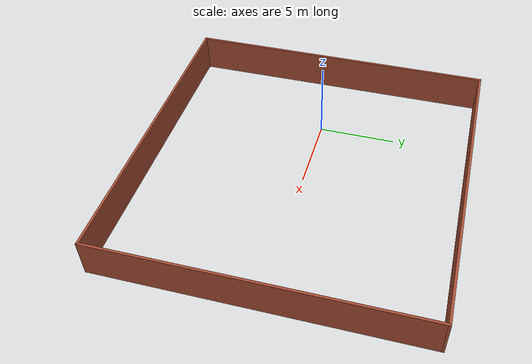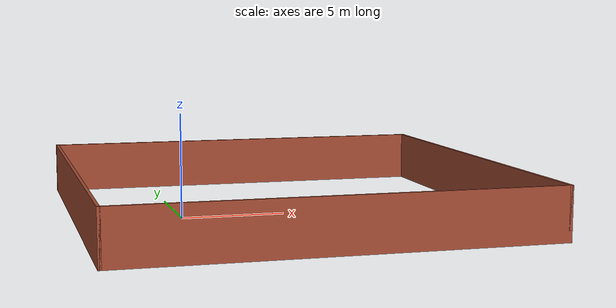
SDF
<?xml version='1.0'?>
<sdf version='1.7'>
  <model name='Training_House'>
    <pose>5 0 0 0 -0 0</pose>
    <link name='Wall_12'>
      <collision name='Wall_12_Collision'>
        <geometry>
          <box>
            <size>20.15 0.15 2.5</size>
          </box>
        </geometry>
        <pose>0 0 1.25 0 -0 0</pose>
      </collision>
      <visual name='Wall_12_Visual'>
        <pose>0 0 1.25 0 -0 0</pose>
        <geometry>
          <box>
            <size>20.15 0.15 2.5</size>
          </box>
        </geometry>
        <material>
          <script>
            <uri>file://media/materials/scripts/gazebo.material</uri>
            <name>Gazebo/Bricks</name>
          </script>
          <ambient>0.996078 0.47451 0.0196078 1</ambient>
        </material>
        <meta>
          <layer>0</layer>
        </meta>
      </visual>
      <pose>-10 0 0 0 -0 -1.5708</pose>
    </link>
    <link name='Wall_13'>
      <collision name='Wall_13_Collision'>
        <geometry>
          <box>
            <size>20.15 0.15 2.5</size>
          </box>
        </geometry>
        <pose>0 0 1.25 0 -0 0</pose>
      </collision>
      <visual name='Wall_13_Visual'>
        <pose>0 0 1.25 0 -0 0</pose>
        <geometry>
          <box>
            <size>20.15 0.15 2.5</size>
          </box>
        </geometry>
        <material>
          <script>
            <uri>file://media/materials/scripts/gazebo.material</uri>
            <name>Gazebo/Bricks</name>
          </script>
          <ambient>0.996078 0.47451 0.0196078 1</ambient>
        </material>
        <meta>
          <layer>0</layer>
        </meta>
      </visual>
      <pose>0 -10 0 0 -0 0</pose>
    </link>
    <link name='Wall_14'>
      <collision name='Wall_14_Collision'>
        <geometry>
          <box>
            <size>20.15 0.15 2.5</size>
          </box>
        </geometry>
        <pose>0 0 1.25 0 -0 0</pose>
      </collision>
      <visual name='Wall_14_Visual'>
        <pose>0 0 1.25 0 -0 0</pose>
        <geometry>
          <box>
            <size>20.15 0.15 2.5</size>
          </box>
        </geometry>
        <material>
          <script>
            <uri>file://media/materials/scripts/gazebo.material</uri>
            <name>Gazebo/Bricks</name>
          </script>
          <ambient>0.996078 0.47451 0.0196078 1</ambient>
        </material>
        <meta>
          <layer>0</layer>
        </meta>
      </visual>
      <pose>10 0 0 0 -0 1.5708</pose>
    </link>
    <link name='Wall_15'>
      <collision name='Wall_15_Collision'>
        <geometry>
          <box>
            <size>20.15 0.15 2.5</size>
          </box>
        </geometry>
        <pose>0 0 1.25 0 -0 0</pose>
      </collision>
      <visual name='Wall_15_Visual'>
        <pose>0 0 1.25 0 -0 0</pose>
        <geometry>
          <box>
            <size>20.15 0.15 2.5</size>
          </box>
        </geometry>
        <material>
          <script>
            <uri>file://media/materials/scripts/gazebo.material</uri>
            <name>Gazebo/Bricks</name>
          </script>
          <ambient>0.996078 0.47451 0.0196078 1</ambient>
        </material>
        <meta>
          <layer>0</layer>
        </meta>
      </visual>
      <pose>0 10 0 0 -0 3.14159</pose>
    </link>
    <static>1</static>
  </model>
</sdf>
